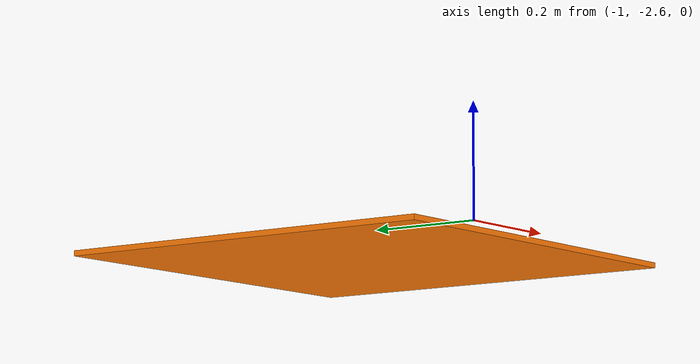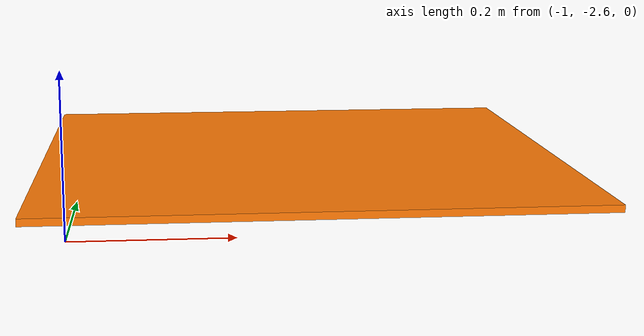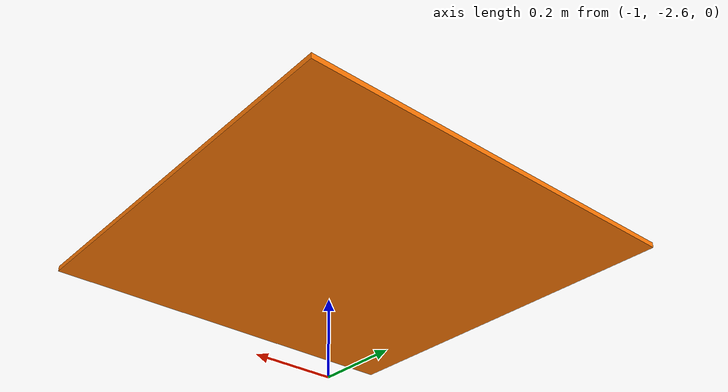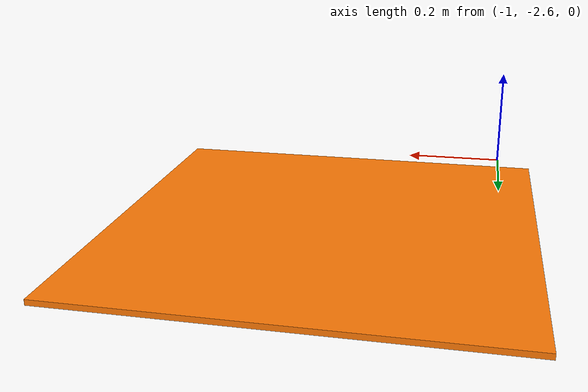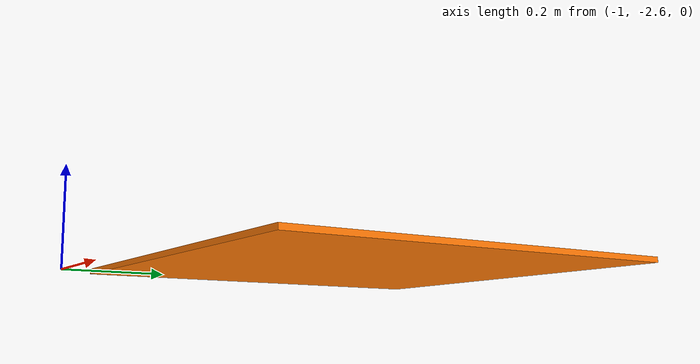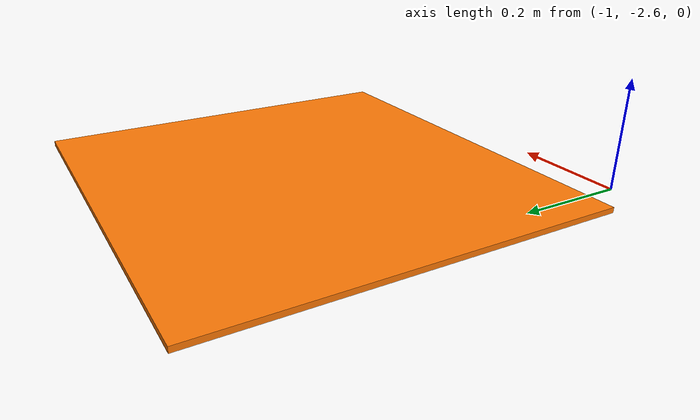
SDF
<?xml version='1.0'?>
<sdf version='1.6'>
  <model name='vismarker'>
    <pose frame=''>-0.685 -2.15 0 0 -0 0</pose>
    <link name='Wall_1'>
      <collision name='Wall_1_Collision'>
        <geometry>
          <box>
            <size>0.76 0.75 0.01</size>
          </box>
        </geometry>
        <pose frame=''>0 0 0.005 0 -0 0</pose>
      </collision>
      <visual name='Wall_1_Visual'>
        <pose frame=''>0 0 0.005 0 -0 0</pose>
        <geometry>
          <box>
            <size>0.76 0.75 0.01</size>
          </box>
        </geometry>
        <material>
          <script>
            <uri>file://media/materials/scripts/gazebo.material</uri>
            <name>Gazebo/Grey</name>
          </script>
          <ambient>0.996078 0.47451 0.0196078 1</ambient>
        </material>
      </visual>
      <pose frame=''>0 0 0 0 -0 0</pose>
    </link>
    <static>false</static>
  </model>
</sdf>
